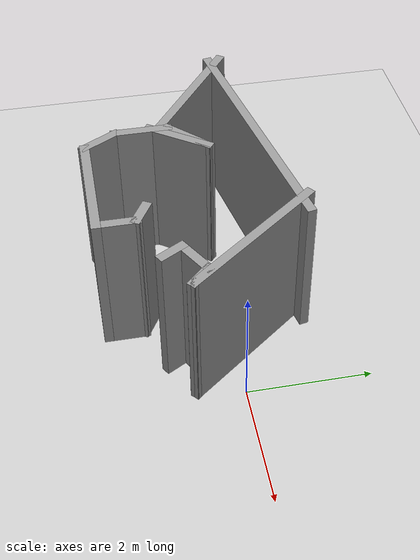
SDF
<sdf version="1.7">
 <world name="default">
  <model name="ground_plane">
   <static>1</static>
   <link name="link">
    <collision name="collision">
     <geometry><plane><normal>0 0 1</normal><size>100 100</size></plane></geometry>
     <surface>
      <contact><collide_bitmask>65535</collide_bitmask></contact>
      <friction><ode><mu>100</mu><mu2>50</mu2></ode></friction>
     </surface>
    </collision>
    <visual name="visual">
     <cast_shadows>0</cast_shadows>
     <geometry><plane><normal>0 0 1</normal><size>100 100</size></plane></geometry>
     <material>
      <script><uri>file://media/materials/scripts/gazebo.material</uri><name>Gazebo/Grey</name></script>
     </material>
    </visual>
   </link>
  </model>
  <light name="sun" type="directional">
   <pose>0 0 10 0 -0 0</pose>
   <diffuse>0.8 0.8 0.8 1</diffuse>
   <specular>0.2 0.2 0.2 1</specular>
   <attenuation>
    <range>1000</range>
    <constant>0.9</constant>
    <linear>0.01</linear>
    <quadratic>0.001</quadratic>
   </attenuation>
   <direction>-0.5 0.1 -0.9</direction>
   <spot><inner_angle>0</inner_angle><outer_angle>0</outer_angle><falloff>0</falloff></spot>
  </light>
  <scene><shadows>0</shadows><ambient>0.4 0.4 0.4 1</ambient><background>0.7 0.7 0.7 1</background></scene>
  <physics type="ode">
   <real_time_update_rate>1000</real_time_update_rate>
   <max_step_size>0.001</max_step_size>
   <real_time_factor>1</real_time_factor>
   <ode>
    <solver>
     <type>quick</type>
     <iters>150</iters>
     <precon_iters>0</precon_iters>
     <sor>1.4</sor>
     <use_dynamic_moi_rescaling>1</use_dynamic_moi_rescaling>
    </solver>
    <constraints>
     <cfm>1e-05</cfm>
     <erp>0.2</erp>
     <contact_max_correcting_vel>2000</contact_max_correcting_vel>
     <contact_surface_layer>0.01</contact_surface_layer>
    </constraints>
   </ode>
  </physics>
  <gravity>0 0 -9.8</gravity>
  <magnetic_field>6e-06 2.3e-05 -4.2e-05</magnetic_field>
  <atmosphere type="adiabatic"/>
  <audio><device>default</device></audio>
  <spherical_coordinates>
   <surface_model>EARTH_WGS84</surface_model>
   <latitude_deg>0</latitude_deg>
   <longitude_deg>0</longitude_deg>
   <elevation>0</elevation>
   <heading_deg>0</heading_deg>
  </spherical_coordinates>
  <model name="test_house">
   <pose>-2.82656 -0.166756 0 0 0.022321 0</pose>
   <link name="Wall_0">
    <collision name="Wall_0_Collision">
     <geometry><box><size>2 0.15 2.5</size></box></geometry>
     <pose>0 0 1.25 0 -0 0</pose>
    </collision>
    <visual name="Wall_0_Visual">
     <pose>0 0 1.25 0 -0 0</pose>
     <geometry><box><size>2 0.15 2.5</size></box></geometry>
     <material>
      <script><uri>file://media/materials/scripts/gazebo.material</uri><name>Gazebo/Grey</name></script>
      <ambient>1 1 1 1</ambient>
     </material>
     <meta><layer>0</layer></meta>
    </visual>
    <pose>0.361944 -1.79393 0 0 -0 0</pose>
   </link>
   <link name="Wall_1">
    <collision name="Wall_1_Collision">
     <geometry><box><size>0.75 0.15 2.5</size></box></geometry>
     <pose>0 0 1.25 0 -0 0</pose>
    </collision>
    <visual name="Wall_1_Visual">
     <pose>0 0 1.25 0 -0 0</pose>
     <geometry><box><size>0.75 0.15 2.5</size></box></geometry>
     <material>
      <script><uri>file://media/materials/scripts/gazebo.material</uri><name>Gazebo/Grey</name></script>
      <ambient>1 1 1 1</ambient>
     </material>
     <meta><layer>0</layer></meta>
    </visual>
    <pose>1.28694 -1.49393 0 0 -0 1.5708</pose>
   </link>
   <link name="Wall_10">
    <collision name="Wall_10_Collision">
     <geometry><box><size>2.33748 0.15 2.5</size></box></geometry>
     <pose>0 0 1.25 0 -0 0</pose>
    </collision>
    <visual name="Wall_10_Visual">
     <pose>0 0 1.25 0 -0 0</pose>
     <geometry><box><size>2.33748 0.15 2.5</size></box></geometry>
     <material>
      <script><uri>file://media/materials/scripts/gazebo.material</uri><name>Gazebo/Grey</name></script>
      <ambient>1 1 1 1</ambient>
     </material>
     <meta><layer>0</layer></meta>
    </visual>
    <pose>-1.82997 0.127471 0 0 -0 2.51447</pose>
   </link>
   <link name="Wall_11">
    <collision name="Wall_11_Collision">
     <geometry><box><size>4.40136 0.15 2.5</size></box></geometry>
     <pose>0 0 1.25 0 -0 0</pose>
    </collision>
    <visual name="Wall_11_Visual">
     <pose>0 0 1.25 0 -0 0</pose>
     <geometry><box><size>4.40136 0.15 2.5</size></box></geometry>
     <material>
      <script><uri>file://media/materials/scripts/gazebo.material</uri><name>Gazebo/Grey</name></script>
      <ambient>1 1 1 1</ambient>
     </material>
     <meta><layer>0</layer></meta>
    </visual>
    <pose>-0.588094 0.970431 0 0 -0 0.190392</pose>
   </link>
   <link name="Wall_12">
    <collision name="Wall_12_Collision">
     <geometry><box><size>2.70339 0.15 2.5</size></box></geometry>
     <pose>0 0 1.25 0 -0 0</pose>
    </collision>
    <visual name="Wall_12_Visual">
     <pose>0 0 1.25 0 -0 0</pose>
     <geometry><box><size>2.70339 0.15 2.5</size></box></geometry>
     <material>
      <script><uri>file://media/materials/scripts/gazebo.material</uri><name>Gazebo/Grey</name></script>
      <ambient>1 1 1 1</ambient>
     </material>
     <meta><layer>0</layer></meta>
    </visual>
    <pose>1.9257 0.428997 0 0 -0 -0.905029</pose>
   </link>
   <link name="Wall_13">
    <collision name="Wall_13_Collision">
     <geometry><box><size>0.5 0.15 2.5</size></box></geometry>
     <pose>0 0 1.25 0 -0 0</pose>
    </collision>
    <visual name="Wall_13_Visual">
     <pose>0 0 1.25 0 -0 0</pose>
     <geometry><box><size>0.5 0.15 2.5</size></box></geometry>
     <material>
      <script><uri>file://media/materials/scripts/gazebo.material</uri><name>Gazebo/Grey</name></script>
      <ambient>1 1 1 1</ambient>
     </material>
     <meta><layer>0</layer></meta>
    </visual>
    <pose>2.59052 -0.451307 0 0 -0 2.35619</pose>
   </link>
   <link name="Wall_14">
    <collision name="Wall_14_Collision">
     <geometry><box><size>0.75 0.15 2.5</size></box></geometry>
     <pose>0 0 1.25 0 -0 0</pose>
    </collision>
    <visual name="Wall_14_Visual">
     <pose>0 0 1.25 0 -0 0</pose>
     <geometry><box><size>0.75 0.15 2.5</size></box></geometry>
     <material>
      <script><uri>file://media/materials/scripts/gazebo.material</uri><name>Gazebo/Grey</name></script>
      <ambient>1 1 1 1</ambient>
     </material>
     <meta><layer>0</layer></meta>
    </visual>
    <pose>2.20697 -0.477563 0 0 -0 -2.61799</pose>
   </link>
   <link name="Wall_15">
    <collision name="Wall_15_Collision">
     <geometry><box><size>0.5 0.15 2.5</size></box></geometry>
     <pose>0 0 1.25 0 -0 0</pose>
    </collision>
    <visual name="Wall_15_Visual">
     <pose>0 0 1.25 0 -0 0</pose>
     <geometry><box><size>0.5 0.15 2.5</size></box></geometry>
     <material>
      <script><uri>file://media/materials/scripts/gazebo.material</uri><name>Gazebo/Grey</name></script>
      <ambient>1 1 1 1</ambient>
     </material>
     <meta><layer>0</layer></meta>
    </visual>
    <pose>2.03466 -0.779117 0 0 -0 -1.0472</pose>
   </link>
   <link name="Wall_2">
    <collision name="Wall_2_Collision">
     <geometry><box><size>0.5 0.15 2.5</size></box></geometry>
     <pose>0 0 1.25 0 -0 0</pose>
    </collision>
    <visual name="Wall_2_Visual">
     <pose>0 0 1.25 0 -0 0</pose>
     <geometry><box><size>0.5 0.15 2.5</size></box></geometry>
     <material>
      <script><uri>file://media/materials/scripts/gazebo.material</uri><name>Gazebo/Grey</name></script>
      <ambient>1 1 1 1</ambient>
     </material>
     <meta><layer>0</layer></meta>
    </visual>
    <pose>1.13539 -1.10643 0 0 -0 2.61799</pose>
   </link>
   <link name="Wall_4">
    <collision name="Wall_4_Collision">
     <geometry><box><size>0.75 0.15 2.5</size></box></geometry>
     <pose>0 0 1.25 0 -0 0</pose>
    </collision>
    <visual name="Wall_4_Visual">
     <pose>0 0 1.25 0 -0 0</pose>
     <geometry><box><size>0.75 0.15 2.5</size></box></geometry>
     <material>
      <script><uri>file://media/materials/scripts/gazebo.material</uri><name>Gazebo/Grey</name></script>
      <ambient>1 1 1 1</ambient>
     </material>
     <meta><layer>0</layer></meta>
    </visual>
    <pose>-0.713056 -1.53412 0 0 -0 2.0944</pose>
   </link>
   <link name="Wall_5">
    <collision name="Wall_5_Collision">
     <geometry><box><size>1 0.15 2.5</size></box></geometry>
     <pose>0 0 1.25 0 -0 0</pose>
    </collision>
    <visual name="Wall_5_Visual">
     <pose>0 0 1.25 0 -0 0</pose>
     <geometry><box><size>1 0.15 2.5</size></box></geometry>
     <material>
      <script><uri>file://media/materials/scripts/gazebo.material</uri><name>Gazebo/Grey</name></script>
      <ambient>1 1 1 1</ambient>
     </material>
     <meta><layer>0</layer></meta>
    </visual>
    <pose>-0.863056 -0.849316 0 0 -0 1.5708</pose>
   </link>
   <link name="Wall_7">
    <collision name="Wall_7_Collision">
     <geometry><box><size>0.95974 0.15 2.5</size></box></geometry>
     <pose>0 0 1.25 0 -0 0</pose>
    </collision>
    <visual name="Wall_7_Visual">
     <pose>0 0 1.25 0 -0 0</pose>
     <geometry><box><size>0.95974 0.15 2.5</size></box></geometry>
     <material>
      <script><uri>file://media/materials/scripts/gazebo.material</uri><name>Gazebo/Grey</name></script>
      <ambient>1 1 1 1</ambient>
     </material>
     <meta><layer>0</layer></meta>
    </visual>
    <pose>-0.577339 -0.137461 0 0 -0 -2.35421</pose>
   </link>
   <link name="Wall_9">
    <collision name="Wall_9_Collision">
     <geometry><box><size>1.2098 0.15 2.5</size></box></geometry>
     <pose>0 0 1.25 0 -0 0</pose>
    </collision>
    <visual name="Wall_9_Visual">
     <pose>0 0 1.25 0 -0 0</pose>
     <geometry><box><size>1.2098 0.15 2.5</size></box></geometry>
     <material>
      <script><uri>file://media/materials/scripts/gazebo.material</uri><name>Gazebo/Grey</name></script>
      <ambient>1 1 1 1</ambient>
     </material>
     <meta><layer>0</layer></meta>
    </visual>
    <pose>-0.597869 -0.283048 0 0 -0 -2.18699</pose>
   </link>
   <static>1</static>
  </model>
 </world>
</sdf>
